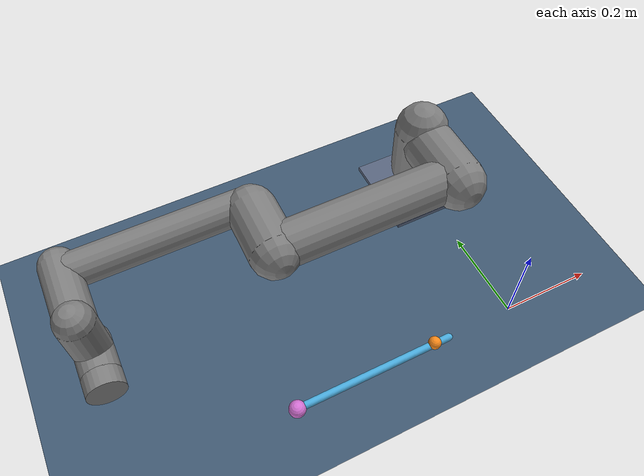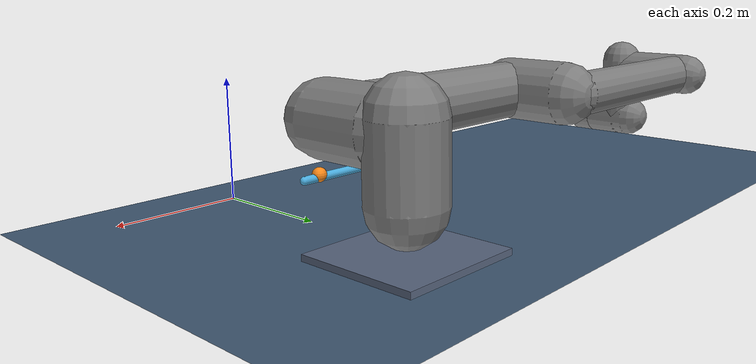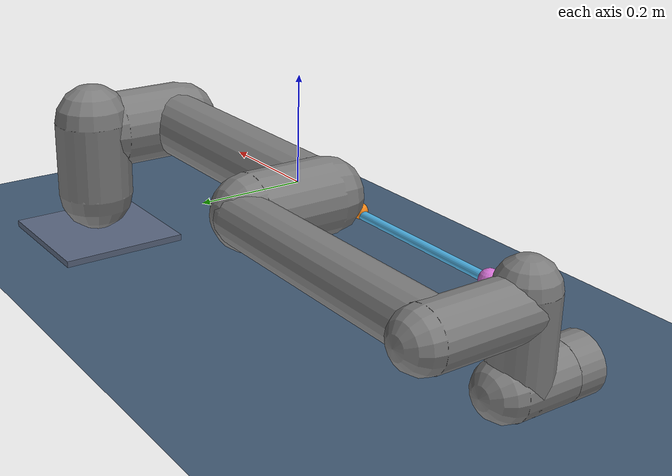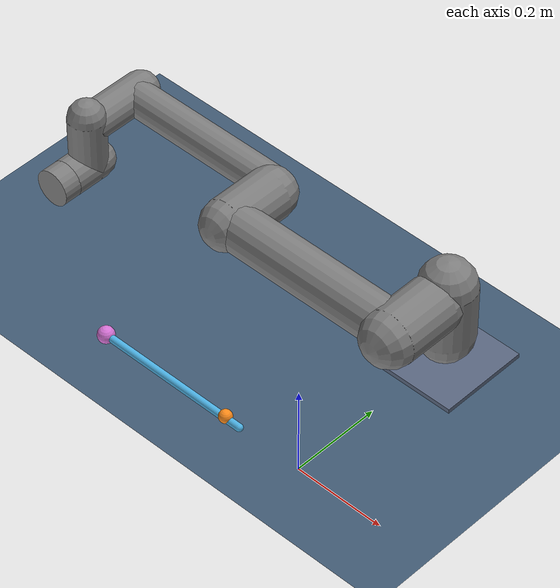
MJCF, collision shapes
<mujoco model="ur5e">
  <compiler angle="radian" meshdir="/Users/hankli/Desktop/coding/mpc_and_gpr/third_party/mujoco_menagerie/universal_robots_ur5e/assets" autolimits="true"/>

  <option integrator="implicitfast" gravity="0 0 -9.81"/>

  <default>
    <default class="ur5e">
      <material specular="0.5" shininess="0.25"/>
      <joint axis="0 1 0" range="-6.28319 6.28319" armature="0.1"/>
      <general gaintype="fixed" biastype="affine" ctrlrange="-6.2831 6.2831" gainprm="2000" biasprm="0 -2000 -400"
        forcerange="-150 150"/>
      <default class="size3">
        <default class="size3_limited">
          <joint range="-3.1415 3.1415"/>
          <general ctrlrange="-3.1415 3.1415"/>
        </default>
      </default>
      <default class="size1">
        <general gainprm="500" biasprm="0 -500 -100" forcerange="-28 28"/>
      </default>
      <default class="visual">
        <geom type="mesh" contype="0" conaffinity="0" group="2"/>
      </default>
      <default class="collision">
        <geom type="capsule" group="3"/>
        <default class="eef_collision">
          <geom type="cylinder"/>
        </default>
      </default>
      <site size="0.001" rgba="0.5 0.5 0.5 0.3" group="4"/>
    </default>
  </default>

  <asset>
    <material class="ur5e" name="black" rgba="0.033 0.033 0.033 1"/>
    <material class="ur5e" name="jointgray" rgba="0.278 0.278 0.278 1"/>
    <material class="ur5e" name="linkgray" rgba="0.82 0.82 0.82 1"/>
    <material class="ur5e" name="urblue" rgba="0.49 0.678 0.8 1"/>

    <mesh file="base_0.obj"/>
    <mesh file="base_1.obj"/>
    <mesh file="shoulder_0.obj"/>
    <mesh file="shoulder_1.obj"/>
    <mesh file="shoulder_2.obj"/>
    <mesh file="upperarm_0.obj"/>
    <mesh file="upperarm_1.obj"/>
    <mesh file="upperarm_2.obj"/>
    <mesh file="upperarm_3.obj"/>
    <mesh file="forearm_0.obj"/>
    <mesh file="forearm_1.obj"/>
    <mesh file="forearm_2.obj"/>
    <mesh file="forearm_3.obj"/>
    <mesh file="wrist1_0.obj"/>
    <mesh file="wrist1_1.obj"/>
    <mesh file="wrist1_2.obj"/>
    <mesh file="wrist2_0.obj"/>
    <mesh file="wrist2_1.obj"/>
    <mesh file="wrist2_2.obj"/>
    <mesh file="wrist3.obj"/>
  </asset>

  <worldbody>
    <geom name="floor" type="plane"
          pos="0 0 -0.01" size="2 2 0.1"
          rgba="0.25 0.35 0.45 1" contype="0" conaffinity="0"/>

    <!-- Arm base plate flush with floor -->
    <geom name="pedestal" type="box"
          pos="0 0.4 -0.005" size="0.1 0.1 0.005"
          rgba="0.35 0.40 0.50 1" contype="0" conaffinity="0"/>

    <body name="hinge" pos="-0.5 0 0">
      <joint name="hinge_slide" type="slide" axis="1 0 0"
             range="-0.05 0.05" stiffness="200" damping="10"/>
      <geom type="sphere" size="0.018" rgba="0.85 0.45 0.85 1" mass="0.1"/>
      <body name="rod_pivot" pos="0 0 0">
        <joint name="rod_rotate" type="hinge" axis="0 -1 0"
               stiffness="0" damping="2.0" range="-0.1 3.3"/>
        <geom name="rod_geom" type="capsule"
              fromto="0 0 0  0.35 0 0"
              size="0.008" rgba="0.3 0.7 0.9 1" mass="1.5"/>
        <body name="rod_tip" pos="0.315 0 0.005">
          <joint name="rod_radial" type="slide" axis="1 0 0"
                 range="-0.03 0.03" stiffness="5000" damping="100"/>
          <geom type="sphere" size="0.014" rgba="1.0 0.55 0.1 1" mass="0.05"/>
          <site name="contact_site" pos="0 0 0" size="0.012" rgba="1 0.5 0 1"/>
        </body>
      </body>
    </body>
    <light name="spotlight" mode="targetbodycom" target="wrist_2_link" pos="0 -1 2"/>
    <body name="ur5e_mount" pos="0 0.4 0">
      <body name="base" quat="0 0 0 -1" childclass="ur5e">
      <inertial mass="4.0" pos="0 0 0" diaginertia="0.00443333156 0.00443333156 0.0072"/>
      <geom mesh="base_0" material="black" class="visual"/>
      <geom mesh="base_1" material="jointgray" class="visual"/>
      <body name="shoulder_link" pos="0 0 0.163">
        <inertial mass="3.7" pos="0 0 0" diaginertia="0.0102675 0.0102675 0.00666"/>
        <joint name="shoulder_pan_joint" class="size3" axis="0 0 1"/>
        <geom mesh="shoulder_0" material="urblue" class="visual"/>
        <geom mesh="shoulder_1" material="black" class="visual"/>
        <geom mesh="shoulder_2" material="jointgray" class="visual"/>
        <geom class="collision" size="0.06 0.06" pos="0 0 -0.04"/>
        <body name="upper_arm_link" pos="0 0.138 0" quat="1 0 1 0">
          <inertial mass="8.393" pos="0 0 0.2125" diaginertia="0.133886 0.133886 0.0151074"/>
          <joint name="shoulder_lift_joint" class="size3"/>
          <geom mesh="upperarm_0" material="linkgray" class="visual"/>
          <geom mesh="upperarm_1" material="black" class="visual"/>
          <geom mesh="upperarm_2" material="jointgray" class="visual"/>
          <geom mesh="upperarm_3" material="urblue" class="visual"/>
          <geom class="collision" pos="0 -0.04 0" quat="1 1 0 0" size="0.06 0.06"/>
          <geom class="collision" size="0.05 0.2" pos="0 0 0.2"/>
          <body name="forearm_link" pos="0 -0.131 0.425">
            <inertial mass="2.275" pos="0 0 0.196" diaginertia="0.0311796 0.0311796 0.004095"/>
            <joint name="elbow_joint" class="size3_limited"/>
            <geom mesh="forearm_0" material="urblue" class="visual"/>
            <geom mesh="forearm_1" material="linkgray" class="visual"/>
            <geom mesh="forearm_2" material="black" class="visual"/>
            <geom mesh="forearm_3" material="jointgray" class="visual"/>
            <geom class="collision" pos="0 0.08 0" quat="1 1 0 0" size="0.055 0.06"/>
            <geom class="collision" size="0.038 0.19" pos="0 0 0.2"/>
            <body name="wrist_1_link" pos="0 0 0.392" quat="1 0 1 0">
              <inertial mass="1.219" pos="0 0.127 0" diaginertia="0.0025599 0.0025599 0.0021942"/>
              <joint name="wrist_1_joint" class="size1"/>
              <geom mesh="wrist1_0" material="black" class="visual"/>
              <geom mesh="wrist1_1" material="urblue" class="visual"/>
              <geom mesh="wrist1_2" material="jointgray" class="visual"/>
              <geom class="collision" pos="0 0.05 0" quat="1 1 0 0" size="0.04 0.07"/>
              <body name="wrist_2_link" pos="0 0.127 0">
                <inertial mass="1.219" pos="0 0 0.1" diaginertia="0.0025599 0.0025599 0.0021942"/>
                <joint name="wrist_2_joint" axis="0 0 1" class="size1"/>
                <geom mesh="wrist2_0" material="black" class="visual"/>
                <geom mesh="wrist2_1" material="urblue" class="visual"/>
                <geom mesh="wrist2_2" material="jointgray" class="visual"/>
                <geom class="collision" size="0.04 0.06" pos="0 0 0.04"/>
                <geom class="collision" pos="0 0.02 0.1" quat="1 1 0 0" size="0.04 0.04"/>
                <body name="wrist_3_link" pos="0 0 0.1">
                  <inertial mass="0.1889" pos="0 0.0771683 0" quat="1 0 0 1"
                    diaginertia="0.000132134 9.90863e-05 9.90863e-05"/>
                  <joint name="wrist_3_joint" class="size1"/>
                  <geom material="linkgray" mesh="wrist3" class="visual"/>
                  <geom class="eef_collision" pos="0 0.08 0" quat="1 1 0 0" size="0.04 0.02"/>
                  <site name="attachment_site" pos="0 0.1 0" quat="-1 1 0 0"/>
                </body>
              </body>
            </body>
          </body>
        </body>
      </body>
    </body>
    </body>
  </worldbody>

  <keyframe>
    <key name="home" qpos="-1.5708 -1.5708 1.5708 -1.5708 -1.5708 0" ctrl="-1.5708 -1.5708 1.5708 -1.5708 -1.5708 0"/>
  </keyframe>

  <actuator>
    <motor name="shoulder_pan_motor"  joint="shoulder_pan_joint"  ctrlrange="-150 150"/>
    <motor name="shoulder_lift_motor" joint="shoulder_lift_joint" ctrlrange="-150 150"/>
    <motor name="elbow_motor"         joint="elbow_joint"         ctrlrange="-150 150"/>
    <motor name="wrist_1_motor"       joint="wrist_1_joint"       ctrlrange="-28 28"/>
    <motor name="wrist_2_motor"       joint="wrist_2_joint"       ctrlrange="-28 28"/>
    <motor name="wrist_3_motor"       joint="wrist_3_joint"       ctrlrange="-28 28"/>
  </actuator>
  <equality>
    <connect site1="attachment_site" site2="contact_site"
             solimp="0.95 0.99 0.0001" solref="0.003 1"/>
  </equality>
  <sensor>
    <framepos    name="ee_pos"      objtype="site" objname="attachment_site"/>
    <framelinvel name="ee_vel"      objtype="site" objname="attachment_site"/>
    <framepos    name="contact_pos" objtype="site" objname="contact_site"/>
    <jointpos    name="rod_angle"   joint="rod_rotate"/>
    <jointpos    name="rod_stretch" joint="rod_radial"/>
    <jointvel    name="rod_stretch_vel" joint="rod_radial"/>
  </sensor>
</mujoco>
